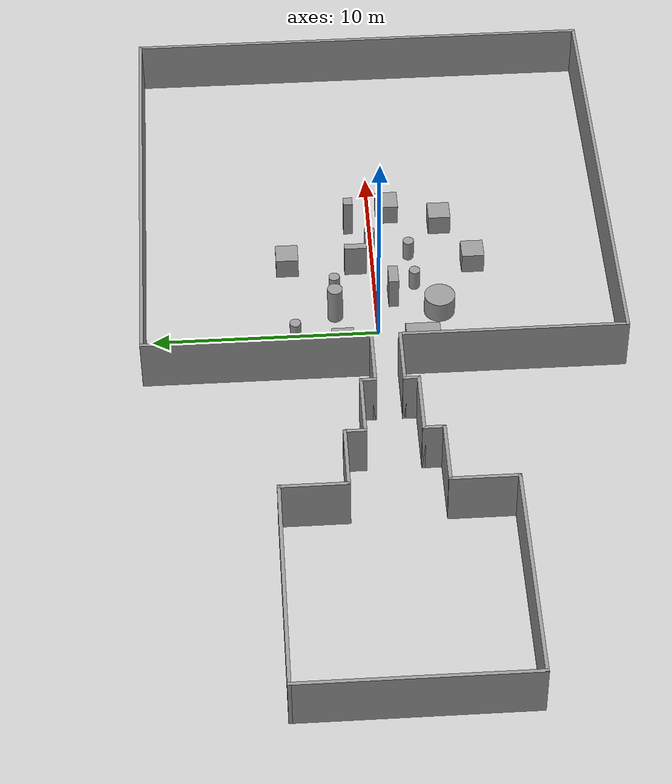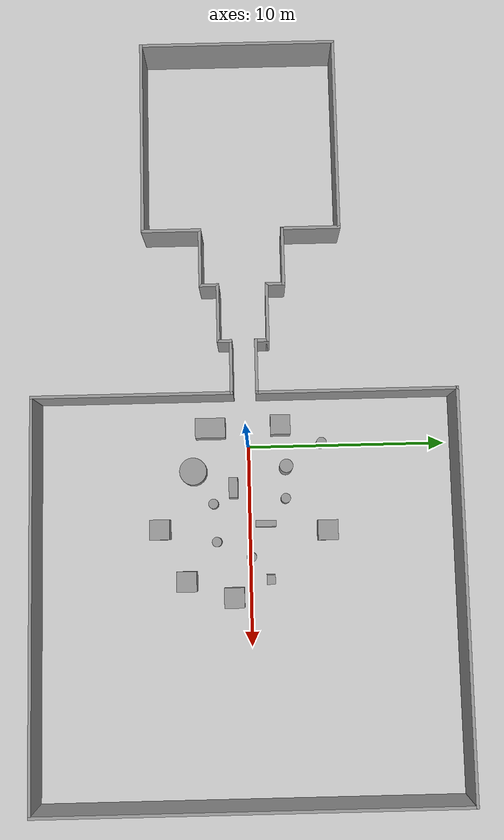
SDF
<sdf version="1.7">
 <world name="default">
  <light name="sun" type="directional">
   <pose>0 0 10 0 -0 0</pose>
   <diffuse>0.8 0.8 0.8 1</diffuse>
   <specular>0.2 0.2 0.2 1</specular>
   <attenuation>
    <range>1000</range>
    <constant>0.9</constant>
    <linear>0.01</linear>
    <quadratic>0.001</quadratic>
   </attenuation>
   <direction>-0.5 0.1 -0.9</direction>
   <spot><inner_angle>0</inner_angle><outer_angle>0</outer_angle><falloff>0</falloff></spot>
  </light>
  <model name="ground_plane">
   <static>1</static>
   <link name="link">
    <collision name="collision">
     <geometry><plane><normal>0 0 1</normal><size>100 100</size></plane></geometry>
     <surface><friction><ode><mu>100</mu><mu2>50</mu2></ode></friction></surface>
    </collision>
    <visual name="visual">
     <cast_shadows>0</cast_shadows>
     <geometry><plane><normal>0 0 1</normal><size>100 100</size></plane></geometry>
     <material>
      <script><uri>file://media/materials/scripts/gazebo.material</uri><name>Gazebo/Grey</name></script>
     </material>
    </visual>
   </link>
  </model>
  <gravity>0 0 -9.8</gravity>
  <magnetic_field>6e-06 2.3e-05 -4.2e-05</magnetic_field>
  <atmosphere type="adiabatic"/>
  <physics type="ode">
   <max_step_size>0.001</max_step_size>
   <real_time_factor>1</real_time_factor>
   <real_time_update_rate>1000</real_time_update_rate>
  </physics>
  <scene><ambient>0.4 0.4 0.4 1</ambient><background>0.7 0.7 0.7 1</background><shadows>1</shadows></scene>
  <spherical_coordinates>
   <surface_model>EARTH_WGS84</surface_model>
   <latitude_deg>0</latitude_deg>
   <longitude_deg>0</longitude_deg>
   <elevation>0</elevation>
   <heading_deg>0</heading_deg>
  </spherical_coordinates>
  <model name="formationSim">
   <pose>-1.615 -0.114308 0 0 -0 0</pose>
   <link name="Wall_49">
    <collision name="Wall_49_Collision">
     <geometry><box><size>10 0.15 2.5</size></box></geometry>
     <pose>0 0 1.25 0 -0 0</pose>
    </collision>
    <visual name="Wall_49_Visual">
     <pose>0 0 1.25 0 -0 0</pose>
     <geometry><box><size>10 0.15 2.5</size></box></geometry>
     <material>
      <script><uri>file://media/materials/scripts/gazebo.material</uri><name>Gazebo/Grey</name></script>
      <ambient>1 1 1 1</ambient>
     </material>
     <meta><layer>0</layer></meta>
    </visual>
    <pose>-19 0 0 0 -0 -1.5708</pose>
   </link>
   <link name="Wall_51">
    <collision name="Wall_51_Collision">
     <geometry><box><size>10 0.15 2.5</size></box></geometry>
     <pose>0 0 1.25 0 -0 0</pose>
    </collision>
    <visual name="Wall_51_Visual">
     <pose>0 0 1.25 0 -0 0</pose>
     <geometry><box><size>10 0.15 2.5</size></box></geometry>
     <material>
      <script><uri>file://media/materials/scripts/gazebo.material</uri><name>Gazebo/Grey</name></script>
      <ambient>1 1 1 1</ambient>
     </material>
     <meta><layer>0</layer></meta>
    </visual>
    <pose>-14.075 4.925 0 0 -0 0</pose>
   </link>
   <link name="Wall_52">
    <collision name="Wall_52_Collision">
     <geometry><box><size>3 0.15 2.5</size></box></geometry>
     <pose>0 0 1.25 0 -0 0</pose>
    </collision>
    <visual name="Wall_52_Visual">
     <pose>0 0 1.25 0 -0 0</pose>
     <geometry><box><size>3 0.15 2.5</size></box></geometry>
     <material>
      <script><uri>file://media/materials/scripts/gazebo.material</uri><name>Gazebo/Grey</name></script>
      <ambient>1 1 1 1</ambient>
     </material>
     <meta><layer>0</layer></meta>
    </visual>
    <pose>-9.15 3.5 0 0 -0 -1.5708</pose>
   </link>
   <link name="Wall_53">
    <collision name="Wall_53_Collision">
     <geometry><box><size>3 0.15 2.5</size></box></geometry>
     <pose>0 0 1.25 0 -0 0</pose>
    </collision>
    <visual name="Wall_53_Visual">
     <pose>0 0 1.25 0 -0 0</pose>
     <geometry><box><size>3 0.15 2.5</size></box></geometry>
     <material>
      <script><uri>file://media/materials/scripts/gazebo.material</uri><name>Gazebo/Grey</name></script>
      <ambient>1 1 1 1</ambient>
     </material>
     <meta><layer>0</layer></meta>
    </visual>
    <pose>-7.725 2.075 0 0 -0 0</pose>
   </link>
   <link name="Wall_55">
    <collision name="Wall_55_Collision">
     <geometry><box><size>10 0.15 2.5</size></box></geometry>
     <pose>0 0 1.25 0 -0 0</pose>
    </collision>
    <visual name="Wall_55_Visual">
     <pose>0 0 1.25 0 -0 0</pose>
     <geometry><box><size>10 0.15 2.5</size></box></geometry>
     <material>
      <script><uri>file://media/materials/scripts/gazebo.material</uri><name>Gazebo/Grey</name></script>
      <ambient>1 1 1 1</ambient>
     </material>
     <meta><layer>0</layer></meta>
    </visual>
    <pose>-14.075 -4.925 0 0 -0 0</pose>
   </link>
   <link name="Wall_56">
    <collision name="Wall_56_Collision">
     <geometry><box><size>3 0.15 2.5</size></box></geometry>
     <pose>0 0 1.25 0 -0 0</pose>
    </collision>
    <visual name="Wall_56_Visual">
     <pose>0 0 1.25 0 -0 0</pose>
     <geometry><box><size>3 0.15 2.5</size></box></geometry>
     <material>
      <script><uri>file://media/materials/scripts/gazebo.material</uri><name>Gazebo/Grey</name></script>
      <ambient>1 1 1 1</ambient>
     </material>
     <meta><layer>0</layer></meta>
    </visual>
    <pose>-9.15 -3.5 0 0 -0 1.5708</pose>
   </link>
   <link name="Wall_57">
    <collision name="Wall_57_Collision">
     <geometry><box><size>3 0.15 2.5</size></box></geometry>
     <pose>0 0 1.25 0 -0 0</pose>
    </collision>
    <visual name="Wall_57_Visual">
     <pose>0 0 1.25 0 -0 0</pose>
     <geometry><box><size>3 0.15 2.5</size></box></geometry>
     <material>
      <script><uri>file://media/materials/scripts/gazebo.material</uri><name>Gazebo/Grey</name></script>
      <ambient>1 1 1 1</ambient>
     </material>
     <meta><layer>0</layer></meta>
    </visual>
    <pose>-7.725 -2.075 0 0 -0 0</pose>
   </link>
   <link name="Wall_59">
    <collision name="Wall_59_Collision">
     <geometry><box><size>1 0.15 2.5</size></box></geometry>
     <pose>0 0 1.25 0 -0 0</pose>
    </collision>
    <visual name="Wall_59_Visual">
     <pose>0 0 1.25 0 -0 0</pose>
     <geometry><box><size>1 0.15 2.5</size></box></geometry>
     <material>
      <script><uri>file://media/materials/scripts/gazebo.material</uri><name>Gazebo/Grey</name></script>
      <ambient>1 1 1 1</ambient>
     </material>
     <meta><layer>0</layer></meta>
    </visual>
    <pose>-6.3 1.65 0 0 -0 -1.5708</pose>
   </link>
   <link name="Wall_61">
    <collision name="Wall_61_Collision">
     <geometry><box><size>1 0.15 2.5</size></box></geometry>
     <pose>0 0 1.25 0 -0 0</pose>
    </collision>
    <visual name="Wall_61_Visual">
     <pose>0 0 1.25 0 -0 0</pose>
     <geometry><box><size>1 0.15 2.5</size></box></geometry>
     <material>
      <script><uri>file://media/materials/scripts/gazebo.material</uri><name>Gazebo/Grey</name></script>
      <ambient>1 1 1 1</ambient>
     </material>
     <meta><layer>0</layer></meta>
    </visual>
    <pose>-6.3 -1.65 0 0 -0 1.5708</pose>
   </link>
   <link name="Wall_62">
    <collision name="Wall_62_Collision">
     <geometry><box><size>3 0.15 2.5</size></box></geometry>
     <pose>0 0 1.25 0 -0 0</pose>
    </collision>
    <visual name="Wall_62_Visual">
     <pose>0 0 1.25 0 -0 0</pose>
     <geometry><box><size>3 0.15 2.5</size></box></geometry>
     <material>
      <script><uri>file://media/materials/scripts/gazebo.material</uri><name>Gazebo/Grey</name></script>
      <ambient>1 1 1 1</ambient>
     </material>
     <meta><layer>0</layer></meta>
    </visual>
    <pose>-4.875 -1.225 0 0 -0 0</pose>
   </link>
   <link name="Wall_64">
    <collision name="Wall_64_Collision">
     <geometry><box><size>3 0.15 2.5</size></box></geometry>
     <pose>0 0 1.25 0 -0 0</pose>
    </collision>
    <visual name="Wall_64_Visual">
     <pose>0 0 1.25 0 -0 0</pose>
     <geometry><box><size>3 0.15 2.5</size></box></geometry>
     <material>
      <script><uri>file://media/materials/scripts/gazebo.material</uri><name>Gazebo/Grey</name></script>
      <ambient>1 1 1 1</ambient>
     </material>
     <meta><layer>0</layer></meta>
    </visual>
    <pose>-4.875 1.225 0 0 -0 0</pose>
   </link>
   <link name="Wall_65">
    <collision name="Wall_65_Collision">
     <geometry><box><size>0.75 0.15 2.5</size></box></geometry>
     <pose>0 0 1.25 0 -0 0</pose>
    </collision>
    <visual name="Wall_65_Visual">
     <pose>0 0 1.25 0 -0 0</pose>
     <geometry><box><size>0.75 0.15 2.5</size></box></geometry>
     <material>
      <script><uri>file://media/materials/scripts/gazebo.material</uri><name>Gazebo/Grey</name></script>
      <ambient>1 1 1 1</ambient>
     </material>
     <meta><layer>0</layer></meta>
    </visual>
    <pose>-3.45 0.925 0 0 -0 -1.5708</pose>
   </link>
   <link name="Wall_66">
    <collision name="Wall_66_Collision">
     <geometry><box><size>2.75 0.15 2.5</size></box></geometry>
     <pose>0 0 1.25 0 -0 0</pose>
    </collision>
    <visual name="Wall_66_Visual">
     <pose>0 0 1.25 0 -0 0</pose>
     <geometry><box><size>2.75 0.15 2.5</size></box></geometry>
     <material>
      <script><uri>file://media/materials/scripts/gazebo.material</uri><name>Gazebo/Grey</name></script>
      <ambient>1 1 1 1</ambient>
     </material>
     <meta><layer>0</layer></meta>
    </visual>
    <pose>-2.15 0.625 0 0 -0 0</pose>
   </link>
   <link name="Wall_68">
    <collision name="Wall_68_Collision">
     <geometry><box><size>0.75 0.15 2.5</size></box></geometry>
     <pose>0 0 1.25 0 -0 0</pose>
    </collision>
    <visual name="Wall_68_Visual">
     <pose>0 0 1.25 0 -0 0</pose>
     <geometry><box><size>0.75 0.15 2.5</size></box></geometry>
     <material>
      <script><uri>file://media/materials/scripts/gazebo.material</uri><name>Gazebo/Grey</name></script>
      <ambient>1 1 1 1</ambient>
     </material>
     <meta><layer>0</layer></meta>
    </visual>
    <pose>-3.45 -0.925 0 0 -0 1.5708</pose>
   </link>
   <link name="Wall_69">
    <collision name="Wall_69_Collision">
     <geometry><box><size>2.75 0.15 2.5</size></box></geometry>
     <pose>0 0 1.25 0 -0 0</pose>
    </collision>
    <visual name="Wall_69_Visual">
     <pose>0 0 1.25 0 -0 0</pose>
     <geometry><box><size>2.75 0.15 2.5</size></box></geometry>
     <material>
      <script><uri>file://media/materials/scripts/gazebo.material</uri><name>Gazebo/Grey</name></script>
      <ambient>1 1 1 1</ambient>
     </material>
     <meta><layer>0</layer></meta>
    </visual>
    <pose>-2.15 -0.625 0 0 -0 0</pose>
   </link>
   <link name="Wall_71">
    <collision name="Wall_71_Collision">
     <geometry><box><size>10 0.15 2.5</size></box></geometry>
     <pose>0 0 1.25 0 -0 0</pose>
    </collision>
    <visual name="Wall_71_Visual">
     <pose>0 0 1.25 0 -0 0</pose>
     <geometry><box><size>10 0.15 2.5</size></box></geometry>
     <material>
      <script><uri>file://media/materials/scripts/gazebo.material</uri><name>Gazebo/Grey</name></script>
      <ambient>1 1 1 1</ambient>
     </material>
     <meta><layer>0</layer></meta>
    </visual>
    <pose>-0.850001 5.55 0 0 -0 1.5708</pose>
   </link>
   <link name="Wall_72">
    <collision name="Wall_72_Collision">
     <geometry><box><size>20 0.15 2.5</size></box></geometry>
     <pose>0 0 1.25 0 -0 0</pose>
    </collision>
    <visual name="Wall_72_Visual">
     <pose>0 0 1.25 0 -0 0</pose>
     <geometry><box><size>20 0.15 2.5</size></box></geometry>
     <material>
      <script><uri>file://media/materials/scripts/gazebo.material</uri><name>Gazebo/Grey</name></script>
      <ambient>1 1 1 1</ambient>
     </material>
     <meta><layer>0</layer></meta>
    </visual>
    <pose>9.075 10.475 0 0 -0 0</pose>
   </link>
   <link name="Wall_74">
    <collision name="Wall_74_Collision">
     <geometry><box><size>10 0.15 2.5</size></box></geometry>
     <pose>0 0 1.25 0 -0 0</pose>
    </collision>
    <visual name="Wall_74_Visual">
     <pose>0 0 1.25 0 -0 0</pose>
     <geometry><box><size>10 0.15 2.5</size></box></geometry>
     <material>
      <script><uri>file://media/materials/scripts/gazebo.material</uri><name>Gazebo/Grey</name></script>
      <ambient>1 1 1 1</ambient>
     </material>
     <meta><layer>0</layer></meta>
    </visual>
    <pose>-0.850001 -5.55 0 0 -0 -1.5708</pose>
   </link>
   <link name="Wall_75">
    <collision name="Wall_75_Collision">
     <geometry><box><size>20 0.15 2.5</size></box></geometry>
     <pose>0 0 1.25 0 -0 0</pose>
    </collision>
    <visual name="Wall_75_Visual">
     <pose>0 0 1.25 0 -0 0</pose>
     <geometry><box><size>20 0.15 2.5</size></box></geometry>
     <material>
      <script><uri>file://media/materials/scripts/gazebo.material</uri><name>Gazebo/Grey</name></script>
      <ambient>1 1 1 1</ambient>
     </material>
     <meta><layer>0</layer></meta>
    </visual>
    <pose>9.075 -10.475 0 0 -0 0</pose>
   </link>
   <link name="Wall_76">
    <collision name="Wall_76_Collision">
     <geometry><box><size>21 0.15 2.5</size></box></geometry>
     <pose>0 0 1.25 0 -0 0</pose>
    </collision>
    <visual name="Wall_76_Visual">
     <pose>0 0 1.25 0 -0 0</pose>
     <geometry><box><size>21 0.15 2.5</size></box></geometry>
     <material>
      <script><uri>file://media/materials/scripts/gazebo.material</uri><name>Gazebo/Grey</name></script>
      <ambient>1 1 1 1</ambient>
     </material>
     <meta><layer>0</layer></meta>
    </visual>
    <pose>19 -0.05 0 0 -0 1.5708</pose>
   </link>
   <static>1</static>
  </model>
  <model name="unit_box">
   <pose>-0.926737 -1.89172 0.5 -0 -0 -0</pose>
   <link name="link">
    <inertial>
     <mass>1</mass>
     <inertia>
      <ixx>0.166667</ixx>
      <ixy>0</ixy>
      <ixz>0</ixz>
      <iyy>0.166667</iyy>
      <iyz>0</iyz>
      <izz>0.166667</izz>
     </inertia>
    </inertial>
    <collision name="collision"><geometry><box><size>1 1.51012 1</size></box></geometry></collision>
    <visual name="visual">
     <geometry><box><size>1 1.51012 1</size></box></geometry>
     <material>
      <script><name>Gazebo/Grey</name><uri>file://media/materials/scripts/gazebo.material</uri></script>
     </material>
    </visual>
   </link>
  </model>
  <model name="unit_box_0">
   <pose>2.12614 -0.773047 0.784069 -1e-06 6e-06 -0.000668</pose>
   <link name="link">
    <inertial>
     <mass>1</mass>
     <inertia>
      <ixx>0.166667</ixx>
      <ixy>0</ixy>
      <ixz>0</ixz>
      <iyy>0.166667</iyy>
      <iyz>0</iyz>
      <izz>0.166667</izz>
     </inertia>
    </inertial>
    <collision name="collision"><geometry><box><size>1 0.43921 1.56814</size></box></geometry></collision>
    <visual name="visual">
     <geometry><box><size>1 0.43921 1.56814</size></box></geometry>
     <material>
      <script><name>Gazebo/Grey</name><uri>file://media/materials/scripts/gazebo.material</uri></script>
     </material>
    </visual>
   </link>
  </model>
  <model name="unit_box_1_clone">
   <pose>3.93778 0.802923 0.809317 6e-06 1e-06 0.00035</pose>
   <link name="link">
    <inertial>
     <mass>1</mass>
     <inertia>
      <ixx>0.166667</ixx>
      <ixy>0</ixy>
      <ixz>0</ixz>
      <iyy>0.166667</iyy>
      <iyz>0</iyz>
      <izz>0.166667</izz>
     </inertia>
    </inertial>
    <collision name="collision"><geometry><box><size>0.311786 1 1.61864</size></box></geometry></collision>
    <visual name="visual">
     <geometry><box><size>0.311786 1 1.61864</size></box></geometry>
     <material>
      <script><name>Gazebo/Grey</name><uri>file://media/materials/scripts/gazebo.material</uri></script>
     </material>
    </visual>
   </link>
  </model>
  <model name="unit_box_2">
   <pose>-1.03092 1.64462 0.499995 0 1e-05 0</pose>
   <link name="link">
    <inertial>
     <mass>1</mass>
     <inertia>
      <ixx>0.166667</ixx>
      <ixy>0</ixy>
      <ixz>0</ixz>
      <iyy>0.166667</iyy>
      <iyz>0</iyz>
      <izz>0.166667</izz>
     </inertia>
    </inertial>
    <collision name="collision"><geometry><box><size>1 1 1</size></box></geometry></collision>
    <visual name="visual">
     <geometry><box><size>1 1 1</size></box></geometry>
     <material>
      <script><name>Gazebo/Grey</name><uri>file://media/materials/scripts/gazebo.material</uri></script>
     </material>
    </visual>
   </link>
  </model>
  <model name="unit_cylinder">
   <pose>1.24335 -2.78643 0.499994 -5e-06 2e-06 -0</pose>
   <link name="link">
    <inertial>
     <mass>1</mass>
     <inertia><ixx>0.145833</ixx><ixy>0</ixy><ixz>0</ixz><iyy>0.145833</iyy><iyz>0</iyz><izz>0.125</izz></inertia>
    </inertial>
    <collision name="collision">
     <geometry><cylinder><radius>0.68336</radius><length>1</length></cylinder></geometry>
    </collision>
    <visual name="visual">
     <geometry><cylinder><radius>0.68336</radius><length>1</length></cylinder></geometry>
     <material>
      <script><name>Gazebo/Grey</name><uri>file://media/materials/scripts/gazebo.material</uri></script>
     </material>
    </visual>
   </link>
  </model>
  <model name="unit_cylinder_0">
   <pose>1.1286 1.87888 0.888074 0 -0 1.2e-05</pose>
   <link name="link">
    <inertial>
     <mass>1</mass>
     <inertia><ixx>0.145833</ixx><ixy>0</ixy><ixz>0</ixz><iyy>0.145833</iyy><iyz>0</iyz><izz>0.125</izz></inertia>
    </inertial>
    <collision name="collision">
     <geometry><cylinder><radius>0.335284</radius><length>1.77615</length></cylinder></geometry>
    </collision>
    <visual name="visual">
     <geometry><cylinder><radius>0.335284</radius><length>1.77615</length></cylinder></geometry>
     <material>
      <script><name>Gazebo/Grey</name><uri>file://media/materials/scripts/gazebo.material</uri></script>
     </material>
    </visual>
   </link>
  </model>
  <model name="unit_cylinder_1">
   <pose>4.78653 -1.6511 0.499991 0 -0 0</pose>
   <link name="link">
    <inertial>
     <mass>1</mass>
     <inertia><ixx>0.145833</ixx><ixy>0</ixy><ixz>0</ixz><iyy>0.145833</iyy><iyz>0</iyz><izz>0.125</izz></inertia>
    </inertial>
    <collision name="collision">
     <geometry><cylinder><radius>0.244432</radius><length>1</length></cylinder></geometry>
    </collision>
    <visual name="visual">
     <geometry><cylinder><radius>0.244432</radius><length>1</length></cylinder></geometry>
     <material>
      <script><name>Gazebo/Grey</name><uri>file://media/materials/scripts/gazebo.material</uri></script>
     </material>
    </visual>
   </link>
  </model>
  <model name="unit_cylinder_1_clone">
   <pose>2.88798 -1.79125 0.499999 0 -0 0</pose>
   <link name="link">
    <inertial>
     <mass>1</mass>
     <inertia><ixx>0.145833</ixx><ixy>0</ixy><ixz>0</ixz><iyy>0.145833</iyy><iyz>0</iyz><izz>0.125</izz></inertia>
    </inertial>
    <collision name="collision">
     <geometry><cylinder><radius>0.244432</radius><length>1</length></cylinder></geometry>
    </collision>
    <visual name="visual">
     <geometry><cylinder><radius>0.244432</radius><length>1</length></cylinder></geometry>
     <material>
      <script><name>Gazebo/Grey</name><uri>file://media/materials/scripts/gazebo.material</uri></script>
     </material>
    </visual>
   </link>
  </model>
  <model name="unit_cylinder_1_clone_0">
   <pose>2.68818 1.83142 0.499991 0 -0 0</pose>
   <link name="link">
    <inertial>
     <mass>1</mass>
     <inertia><ixx>0.145833</ixx><ixy>0</ixy><ixz>0</ixz><iyy>0.145833</iyy><iyz>0</iyz><izz>0.125</izz></inertia>
    </inertial>
    <collision name="collision">
     <geometry><cylinder><radius>0.244432</radius><length>1</length></cylinder></geometry>
    </collision>
    <visual name="visual">
     <geometry><cylinder><radius>0.244432</radius><length>1</length></cylinder></geometry>
     <material>
      <script><name>Gazebo/Grey</name><uri>file://media/materials/scripts/gazebo.material</uri></script>
     </material>
    </visual>
   </link>
  </model>
  <model name="unit_cylinder_1_clone_1">
   <pose>5.56714 0.071177 0.499999 0 -0 0</pose>
   <link name="link">
    <inertial>
     <mass>1</mass>
     <inertia><ixx>0.145833</ixx><ixy>0</ixy><ixz>0</ixz><iyy>0.145833</iyy><iyz>0</iyz><izz>0.125</izz></inertia>
    </inertial>
    <collision name="collision">
     <geometry><cylinder><radius>0.244432</radius><length>1</length></cylinder></geometry>
    </collision>
    <visual name="visual">
     <geometry><cylinder><radius>0.244432</radius><length>1</length></cylinder></geometry>
     <material>
      <script><name>Gazebo/Grey</name><uri>file://media/materials/scripts/gazebo.material</uri></script>
     </material>
    </visual>
   </link>
  </model>
  <model name="unit_cylinder_1_clone_2">
   <pose>-0.089465 3.69436 0.499991 0 -0 0</pose>
   <link name="link">
    <inertial>
     <mass>1</mass>
     <inertia><ixx>0.145833</ixx><ixy>0</ixy><ixz>0</ixz><iyy>0.145833</iyy><iyz>0</iyz><izz>0.125</izz></inertia>
    </inertial>
    <collision name="collision">
     <geometry><cylinder><radius>0.244432</radius><length>1</length></cylinder></geometry>
    </collision>
    <visual name="visual">
     <geometry><cylinder><radius>0.244432</radius><length>1</length></cylinder></geometry>
     <material>
      <script><name>Gazebo/Grey</name><uri>file://media/materials/scripts/gazebo.material</uri></script>
     </material>
    </visual>
   </link>
  </model>
  <model name="unit_box_2_clone">
   <pose>4.30813 3.89494 0.499995 0 1e-05 0</pose>
   <link name="link">
    <inertial>
     <mass>1</mass>
     <inertia>
      <ixx>0.166667</ixx>
      <ixy>0</ixy>
      <ixz>0</ixz>
      <iyy>0.166667</iyy>
      <iyz>0</iyz>
      <izz>0.166667</izz>
     </inertia>
    </inertial>
    <collision name="collision"><geometry><box><size>1 1 1</size></box></geometry></collision>
    <visual name="visual">
     <geometry><box><size>1 1 1</size></box></geometry>
     <material>
      <script><name>Gazebo/Grey</name><uri>file://media/materials/scripts/gazebo.material</uri></script>
     </material>
    </visual>
   </link>
  </model>
  <model name="unit_box_2_clone_0">
   <pose>6.70983 -3.18141 0.499995 -1e-05 -0 -0</pose>
   <link name="link">
    <inertial>
     <mass>1</mass>
     <inertia>
      <ixx>0.166667</ixx>
      <ixy>0</ixy>
      <ixz>0</ixz>
      <iyy>0.166667</iyy>
      <iyz>0</iyz>
      <izz>0.166667</izz>
     </inertia>
    </inertial>
    <collision name="collision"><geometry><box><size>1 1 1</size></box></geometry></collision>
    <visual name="visual">
     <geometry><box><size>1 1 1</size></box></geometry>
     <material>
      <script><name>Gazebo/Grey</name><uri>file://media/materials/scripts/gazebo.material</uri></script>
     </material>
    </visual>
   </link>
  </model>
  <model name="unit_box_2_clone_1">
   <pose>4.11726 -4.49401 0.499995 0 1e-05 0</pose>
   <link name="link">
    <inertial>
     <mass>1</mass>
     <inertia>
      <ixx>0.166667</ixx>
      <ixy>0</ixy>
      <ixz>0</ixz>
      <iyy>0.166667</iyy>
      <iyz>0</iyz>
      <izz>0.166667</izz>
     </inertia>
    </inertial>
    <collision name="collision"><geometry><box><size>1 1 1</size></box></geometry></collision>
    <visual name="visual">
     <geometry><box><size>1 1 1</size></box></geometry>
     <material>
      <script><name>Gazebo/Grey</name><uri>file://media/materials/scripts/gazebo.material</uri></script>
     </material>
    </visual>
   </link>
  </model>
  <model name="unit_box_2_clone_2">
   <pose>7.55214 -0.833466 0.499995 0 1e-05 0</pose>
   <link name="link">
    <inertial>
     <mass>1</mass>
     <inertia>
      <ixx>0.166667</ixx>
      <ixy>0</ixy>
      <ixz>0</ixz>
      <iyy>0.166667</iyy>
      <iyz>0</iyz>
      <izz>0.166667</izz>
     </inertia>
    </inertial>
    <collision name="collision"><geometry><box><size>1 1 1</size></box></geometry></collision>
    <visual name="visual">
     <geometry><box><size>1 1 1</size></box></geometry>
     <material>
      <script><name>Gazebo/Grey</name><uri>file://media/materials/scripts/gazebo.material</uri></script>
     </material>
    </visual>
   </link>
  </model>
  <model name="unit_box_2_clone_3">
   <pose>6.6674 0.99611 0.922869 -1e-06 -3e-06 -0.000189</pose>
   <link name="link">
    <inertial>
     <mass>1</mass>
     <inertia>
      <ixx>0.166667</ixx>
      <ixy>0</ixy>
      <ixz>0</ixz>
      <iyy>0.166667</iyy>
      <iyz>0</iyz>
      <izz>0.166667</izz>
     </inertia>
    </inertial>
    <collision name="collision"><geometry><box><size>0.464154 0.409251 1.84574</size></box></geometry></collision>
    <visual name="visual">
     <geometry><box><size>0.464154 0.409251 1.84574</size></box></geometry>
     <material>
      <script><name>Gazebo/Grey</name><uri>file://media/materials/scripts/gazebo.material</uri></script>
     </material>
    </visual>
   </link>
  </model>
 </world>
</sdf>
